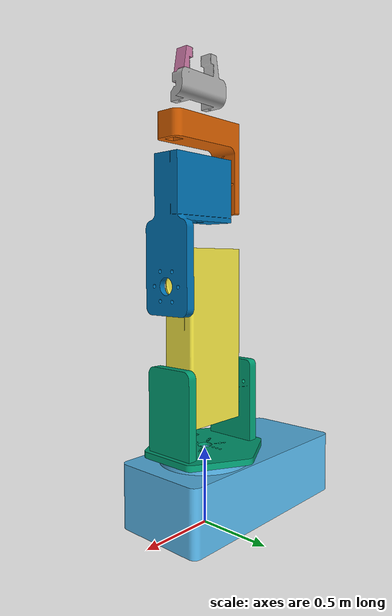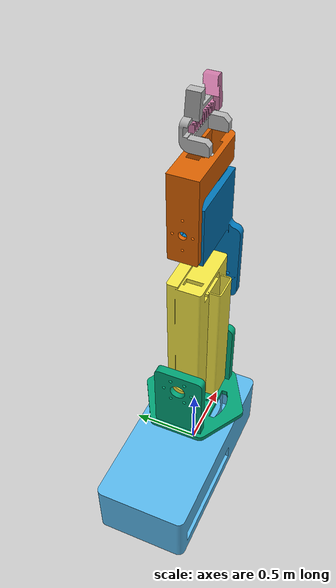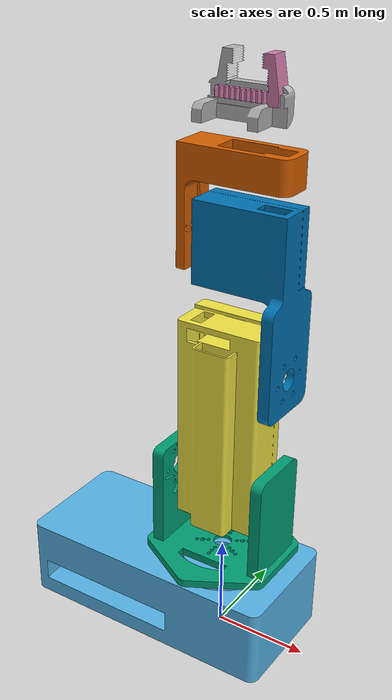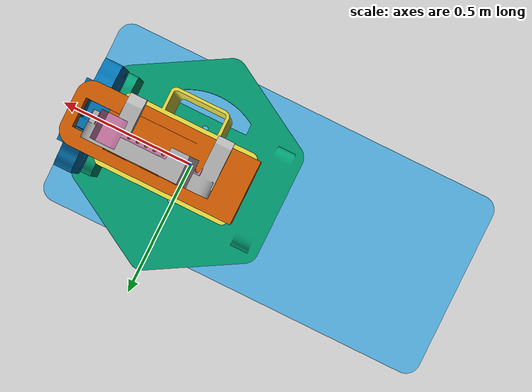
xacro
<?xml version="1.0"?>
<robot xmlns:xacro="http://www.ros.org/wiki/xacro" name="robot_name">

    <xacro:property name="effort" value="30"/>
    <xacro:property name="velocity" value="10"/>

    <xacro:property name="link_length" value="0.66" />

    <xacro:property name="gripper_x" value="0.18"/>
    <xacro:property name="gripper_y" value="0.45"/>
    <xacro:property name="gripper_z" value="1.81"/>

    <xacro:property name="link_origin_x" value="-0.1"/>
    <xacro:property name="link_origin_y" value="-0.098"/>

    <link name="base_footprint" />

    <link name="base_link">
        <visual>
            <geometry>
                <mesh filename="package://parrot_v1_description/meshes/base_parrot.dae" scale="0.01 0.01 0.01"/>
            </geometry>
            <origin xyz="${link_origin_x} ${link_origin_y} 0.34" rpy="0 0 0" />
        </visual>
    </link>

    <link name="link_1">
        <visual>
            <geometry>
                <mesh filename="package://parrot_v1_description/meshes/joint_1_parrot.dae" scale="0.01 0.01 0.01"/>
            </geometry>
            <origin xyz="${link_origin_x} ${link_origin_y} -0.14" rpy="0 0 0" />
        </visual>
    </link>

    <link name="link_2">
        <visual>
            <geometry>
                <mesh filename="package://parrot_v1_description/meshes/joint_2_parrot.dae" scale="0.01 0.01 0.01"/>
            </geometry>
            <origin xyz="${link_origin_x} ${link_origin_y} -0.5725" rpy="0 0 0" />
        </visual>
    </link>

    <link name="link_3">
        <visual>
            <geometry>
                <mesh filename="package://parrot_v1_description/meshes/joint_3_parrot.dae" scale="0.01 0.01 0.01"/>
            </geometry>
            <origin xyz="${link_origin_x} ${link_origin_y} -1.245" rpy="0 0 0" />
        </visual>
    </link>

    <link name="link_4">
        <visual>
            <geometry>
                <mesh filename="package://parrot_v1_description/meshes/joint_4_parrot.dae" scale="0.01 0.01 0.01"/>
            </geometry>
            <origin xyz="${link_origin_x} ${link_origin_y} -1.92" rpy="0 0 0" />
        </visual>
    </link>

    <link name="gripper_dynamic_link">
        <visual>
            <geometry>
                <mesh filename="package://parrot_v1_description/meshes/dynamic_gripper_parrot.dae" scale="0.01 0.01 0.01"/>
            </geometry>
            <!-- 0.005 - x coords to avoid collision of gripper static and dynamic parts during prismatic motion -->
            <origin xyz="-0.02 ${gripper_y} ${gripper_z - 0.08}" rpy="0 ${-pi /2} ${pi}" />
        </visual>
    </link>

    <link name="gripper_static_link">
        <visual>
            <geometry>
                <mesh filename="package://parrot_v1_description/meshes/static_gripper_parrot.dae" scale="0.01 0.01 0.01"/>
            </geometry>
            <origin xyz="${gripper_x} ${gripper_y} ${gripper_z}" rpy="0 ${-pi /2} ${pi}" />
        </visual>
    </link>

    <joint name="base_link_base_footprint_joint" type="fixed">
        <parent link="base_footprint" />
        <child link="base_link" />
        <origin xyz="0 0 0" rpy="0 0 0" />
    </joint>

    <joint name="joint_1" type="revolute">
        <parent link="base_link" />
        <child link="link_1" />
        <origin xyz="0 0 0.48" rpy="0 0 0" />
        <axis xyz="0 0 1"/>
        <limit lower="${pi /2}" upper="${-pi /2}" effort="${effort}" velocity="${velocity}"/>
    </joint>

    <joint name="joint_2" type="revolute">
        <parent link="link_1" />
        <child link="link_2" />
        <origin xyz="0 0 0.43" rpy="0 0 0" />
        <axis xyz="1 0 0"/>
        <limit lower="${pi /2}" upper="${-pi /2}" effort="${effort}" velocity="${velocity}"/>
    </joint>

    <joint name="joint_3" type="revolute">
        <parent link="link_2" />
        <child link="link_3" />
        <origin xyz="0 0 ${link_length}" rpy="0 0 0" />
        <axis xyz="1 0 0"/>
        <limit lower="${pi /2}" upper="${-pi /2}" effort="${effort}" velocity="${velocity}"/>
    </joint>

    <joint name="joint_4" type="revolute">
        <parent link="link_3" />
        <child link="link_4" />
        <origin xyz="0 0 ${link_length}" rpy="0 0 0" />
        <axis xyz="1 0 0"/>
        <limit lower="${pi /2}" upper="${-pi /2}" effort="${effort}" velocity="${velocity}"/>
    </joint>

    <joint name="link_4_gripper_static_link_joint" type="fixed">
        <parent link="link_4" />
        <child link="gripper_static_link" />
        <origin xyz="0 0 0.5" rpy="0 0 0" />
    </joint>

    <joint name="link_4_gripper_dynamic_link_joint" type="prismatic">
        <parent link="link_4" />
        <child link="gripper_dynamic_link" />
        <origin xyz="0.198 -0.01 0.578" rpy="0 0 0" />
        <axis xyz="1 0 0"/>
        <limit lower="-0.135" upper="0" effort="${effort}" velocity="${velocity}"/>
    </joint>

</robot>
